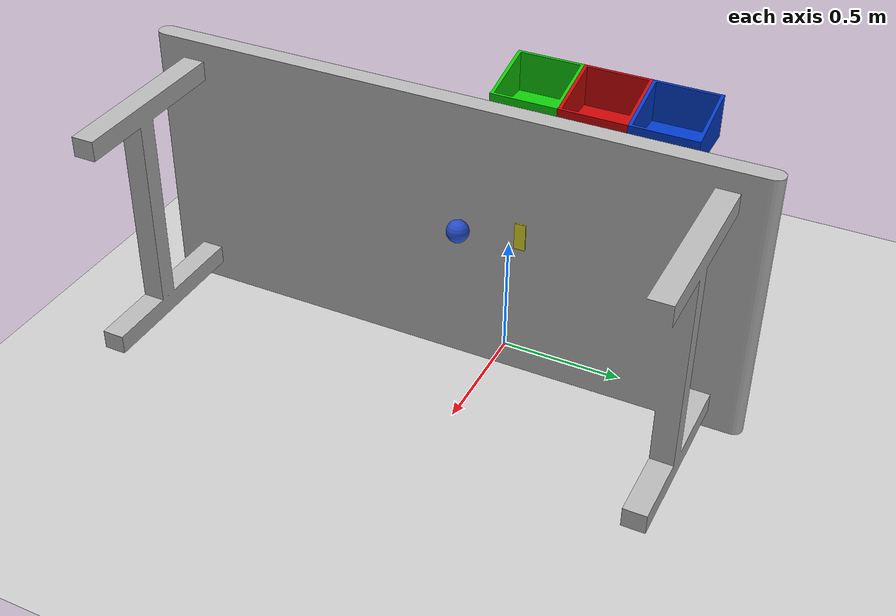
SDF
<sdf version="1.7">
 <world name="default">
  <light name="sun" type="directional">
   <pose>0 0 10 0 -0 0</pose>
   <diffuse>0.8 0.8 0.8 1</diffuse>
   <specular>0.2 0.2 0.2 1</specular>
   <attenuation>
    <range>1000</range>
    <constant>0.9</constant>
    <linear>0.01</linear>
    <quadratic>0.001</quadratic>
   </attenuation>
   <direction>-0.5 0.1 -0.9</direction>
   <spot><inner_angle>0</inner_angle><outer_angle>0</outer_angle><falloff>0</falloff></spot>
  </light>
  <model name="ground_plane">
   <static>1</static>
   <link name="link">
    <collision name="collision">
     <geometry><plane><normal>0 0 1</normal><size>100 100</size></plane></geometry>
     <surface>
      <contact><collide_bitmask>65535</collide_bitmask></contact>
      <friction><ode><mu>100</mu><mu2>50</mu2></ode></friction>
     </surface>
    </collision>
    <visual name="visual">
     <cast_shadows>0</cast_shadows>
     <geometry><plane><normal>0 0 1</normal><size>100 100</size></plane></geometry>
     <material>
      <script><uri>file://media/materials/scripts/gazebo.material</uri><name>Gazebo/Grey</name></script>
     </material>
    </visual>
   </link>
  </model>
  <gravity>0 0 -9.8</gravity>
  <magnetic_field>6e-06 2.3e-05 -4.2e-05</magnetic_field>
  <atmosphere type="adiabatic"/>
  <physics name="default_physics" default="0" type="ode">
   <max_step_size>0.001</max_step_size>
   <real_time_factor>1</real_time_factor>
   <real_time_update_rate>1000</real_time_update_rate>
  </physics>
  <scene><ambient>0.4 0.4 0.4 1</ambient><background>0.7 0.7 0.7 1</background><shadows>1</shadows></scene>
  <spherical_coordinates>
   <surface_model>EARTH_WGS84</surface_model>
   <latitude_deg>0</latitude_deg>
   <longitude_deg>0</longitude_deg>
   <elevation>0</elevation>
   <heading_deg>0</heading_deg>
  </spherical_coordinates>
  <model name="conveyor">
   <link name="link">
    <inertial>
     <mass>1</mass>
     <inertia><ixx>1</ixx><ixy>0</ixy><ixz>0</ixz><iyy>1</iyy><iyz>0</iyz><izz>1</izz></inertia>
    </inertial>
    <visual name="visual">
     <geometry><mesh><scale>0.45 0.35 0.5</scale><uri>model://conveyor/meshes/conveyor.dae</uri></mesh></geometry>
    </visual>
    <collision name="collision_0">
     <geometry><box><size>2.4 0.8 0.1</size></box></geometry>
     <surface>
      <friction>
       <ode><mu>1</mu><mu2>1</mu2><fdir1>0 0 0</fdir1><slip1>0</slip1><slip2>0</slip2></ode>
       <torsional>
        <coefficient>1</coefficient>
        <patch_radius>0</patch_radius>
        <surface_radius>0</surface_radius>
        <use_patch_radius>1</use_patch_radius>
        <ode><slip>0</slip></ode>
       </torsional>
      </friction>
      <bounce><restitution_coefficient>0</restitution_coefficient><threshold>1e+06</threshold></bounce>
      <contact>
       <collide_without_contact>0</collide_without_contact>
       <collide_without_contact_bitmask>1</collide_without_contact_bitmask>
       <collide_bitmask>1</collide_bitmask>
       <ode>
        <soft_cfm>0</soft_cfm>
        <soft_erp>0.2</soft_erp>
        <kp>1e+13</kp>
        <kd>1</kd>
        <max_vel>0.01</max_vel>
        <min_depth>0</min_depth>
       </ode>
       <bullet>
        <split_impulse>1</split_impulse>
        <split_impulse_penetration_threshold>-0.01</split_impulse_penetration_threshold>
        <soft_cfm>0</soft_cfm>
        <soft_erp>0.2</soft_erp>
        <kp>1e+13</kp>
        <kd>1</kd>
       </bullet>
      </contact>
     </surface>
    </collision>
   </link>
   <static>1</static>
   <pose>0.6 0 0.95 0 -0 1.57</pose>
  </model>
  <model name="green_target">
   <static>1</static>
   <link name="link">
    <inertial>
     <mass>1</mass>
     <inertia><ixx>1</ixx><ixy>0</ixy><ixz>0</ixz><iyy>1</iyy><iyz>0</iyz><izz>1</izz></inertia>
    </inertial>
    <visual name="visual">
     <pose>0 0 0.01 0 -0 0</pose>
     <geometry>
      <mesh><scale>0.5 0.5 0.5</scale><uri>model://green_target/meshes/green_target.dae</uri></mesh>
     </geometry>
    </visual>
    <collision name="front_wall">
     <pose>0.144 0 0 0 -0 0</pose>
     <geometry><box><size>0.012 0.3 0.24</size></box></geometry>
     <surface>
      <friction>
       <ode><mu>1</mu><mu2>1</mu2><fdir1>0 0 0</fdir1><slip1>0</slip1><slip2>0</slip2></ode>
       <torsional>
        <coefficient>1</coefficient>
        <patch_radius>0</patch_radius>
        <surface_radius>0</surface_radius>
        <use_patch_radius>1</use_patch_radius>
        <ode><slip>0</slip></ode>
       </torsional>
      </friction>
      <bounce><restitution_coefficient>0</restitution_coefficient><threshold>1e+06</threshold></bounce>
      <contact>
       <collide_without_contact>0</collide_without_contact>
       <collide_without_contact_bitmask>1</collide_without_contact_bitmask>
       <collide_bitmask>1</collide_bitmask>
       <ode>
        <soft_cfm>0</soft_cfm>
        <soft_erp>0.2</soft_erp>
        <kp>1e+13</kp>
        <kd>1</kd>
        <max_vel>0.01</max_vel>
        <min_depth>0</min_depth>
       </ode>
       <bullet>
        <split_impulse>1</split_impulse>
        <split_impulse_penetration_threshold>-0.01</split_impulse_penetration_threshold>
        <soft_cfm>0</soft_cfm>
        <soft_erp>0.2</soft_erp>
        <kp>1e+13</kp>
        <kd>1</kd>
       </bullet>
      </contact>
     </surface>
    </collision>
    <collision name="right_wall">
     <pose>0 -0.144 0 0 -0 0</pose>
     <geometry><box><size>0.3 0.012 0.36</size></box></geometry>
     <surface>
      <friction>
       <ode><mu>1</mu><mu2>1</mu2><fdir1>0 0 0</fdir1><slip1>0</slip1><slip2>0</slip2></ode>
       <torsional>
        <coefficient>1</coefficient>
        <patch_radius>0</patch_radius>
        <surface_radius>0</surface_radius>
        <use_patch_radius>1</use_patch_radius>
        <ode><slip>0</slip></ode>
       </torsional>
      </friction>
      <bounce><restitution_coefficient>0</restitution_coefficient><threshold>1e+06</threshold></bounce>
      <contact>
       <collide_without_contact>0</collide_without_contact>
       <collide_without_contact_bitmask>1</collide_without_contact_bitmask>
       <collide_bitmask>1</collide_bitmask>
       <ode>
        <soft_cfm>0</soft_cfm>
        <soft_erp>0.2</soft_erp>
        <kp>1e+13</kp>
        <kd>1</kd>
        <max_vel>0.01</max_vel>
        <min_depth>0</min_depth>
       </ode>
       <bullet>
        <split_impulse>1</split_impulse>
        <split_impulse_penetration_threshold>-0.01</split_impulse_penetration_threshold>
        <soft_cfm>0</soft_cfm>
        <soft_erp>0.2</soft_erp>
        <kp>1e+13</kp>
        <kd>1</kd>
       </bullet>
      </contact>
     </surface>
    </collision>
    <collision name="bottom">
     <geometry><box><size>0.3 0.3 0.025</size></box></geometry>
     <surface>
      <friction>
       <ode><mu>1</mu><mu2>1</mu2><fdir1>0 0 0</fdir1><slip1>0</slip1><slip2>0</slip2></ode>
       <torsional>
        <coefficient>1</coefficient>
        <patch_radius>0</patch_radius>
        <surface_radius>0</surface_radius>
        <use_patch_radius>1</use_patch_radius>
        <ode><slip>0</slip></ode>
       </torsional>
      </friction>
      <bounce><restitution_coefficient>0</restitution_coefficient><threshold>1e+06</threshold></bounce>
      <contact>
       <collide_without_contact>0</collide_without_contact>
       <collide_without_contact_bitmask>1</collide_without_contact_bitmask>
       <collide_bitmask>1</collide_bitmask>
       <ode>
        <soft_cfm>0</soft_cfm>
        <soft_erp>0.2</soft_erp>
        <kp>1e+13</kp>
        <kd>1</kd>
        <max_vel>0.01</max_vel>
        <min_depth>0</min_depth>
       </ode>
       <bullet>
        <split_impulse>1</split_impulse>
        <split_impulse_penetration_threshold>-0.01</split_impulse_penetration_threshold>
        <soft_cfm>0</soft_cfm>
        <soft_erp>0.2</soft_erp>
        <kp>1e+13</kp>
        <kd>1</kd>
       </bullet>
      </contact>
     </surface>
    </collision>
    <collision name="left_wall">
     <pose>0 0.144 0 0 -0 0</pose>
     <geometry><box><size>0.3 0.012 0.39</size></box></geometry>
     <surface>
      <friction>
       <ode><mu>1</mu><mu2>1</mu2><fdir1>0 0 0</fdir1><slip1>0</slip1><slip2>0</slip2></ode>
       <torsional>
        <coefficient>1</coefficient>
        <patch_radius>0</patch_radius>
        <surface_radius>0</surface_radius>
        <use_patch_radius>1</use_patch_radius>
        <ode><slip>0</slip></ode>
       </torsional>
      </friction>
      <bounce><restitution_coefficient>0</restitution_coefficient><threshold>1e+06</threshold></bounce>
      <contact>
       <collide_without_contact>0</collide_without_contact>
       <collide_without_contact_bitmask>1</collide_without_contact_bitmask>
       <collide_bitmask>1</collide_bitmask>
       <ode>
        <soft_cfm>0</soft_cfm>
        <soft_erp>0.2</soft_erp>
        <kp>1e+13</kp>
        <kd>1</kd>
        <max_vel>0.01</max_vel>
        <min_depth>0</min_depth>
       </ode>
       <bullet>
        <split_impulse>1</split_impulse>
        <split_impulse_penetration_threshold>-0.01</split_impulse_penetration_threshold>
        <soft_cfm>0</soft_cfm>
        <soft_erp>0.2</soft_erp>
        <kp>1e+13</kp>
        <kd>1</kd>
       </bullet>
      </contact>
     </surface>
    </collision>
    <collision name="back_wall">
     <pose>-0.144 0 0 0 -0 0</pose>
     <geometry><box><size>0.012 0.3 0.39</size></box></geometry>
     <surface>
      <friction>
       <ode><mu>1</mu><mu2>1</mu2><fdir1>0 0 0</fdir1><slip1>0</slip1><slip2>0</slip2></ode>
       <torsional>
        <coefficient>1</coefficient>
        <patch_radius>0</patch_radius>
        <surface_radius>0</surface_radius>
        <use_patch_radius>1</use_patch_radius>
        <ode><slip>0</slip></ode>
       </torsional>
      </friction>
      <bounce><restitution_coefficient>0</restitution_coefficient><threshold>1e+06</threshold></bounce>
      <contact>
       <collide_without_contact>0</collide_without_contact>
       <collide_without_contact_bitmask>1</collide_without_contact_bitmask>
       <collide_bitmask>1</collide_bitmask>
       <ode>
        <soft_cfm>0</soft_cfm>
        <soft_erp>0.2</soft_erp>
        <kp>1e+13</kp>
        <kd>1</kd>
        <max_vel>0.01</max_vel>
        <min_depth>0</min_depth>
       </ode>
       <bullet>
        <split_impulse>1</split_impulse>
        <split_impulse_penetration_threshold>-0.01</split_impulse_penetration_threshold>
        <soft_cfm>0</soft_cfm>
        <soft_erp>0.2</soft_erp>
        <kp>1e+13</kp>
        <kd>1</kd>
       </bullet>
      </contact>
     </surface>
    </collision>
   </link>
   <pose>-0.6 -0.15 0.755 0 -0 0</pose>
  </model>
  <model name="red_target">
   <static>1</static>
   <link name="link">
    <inertial>
     <mass>1</mass>
     <inertia><ixx>1</ixx><ixy>0</ixy><ixz>0</ixz><iyy>1</iyy><iyz>0</iyz><izz>1</izz></inertia>
    </inertial>
    <visual name="visual">
     <pose>0 0 0.01 0 -0 0</pose>
     <geometry>
      <mesh><scale>0.5 0.5 0.5</scale><uri>model://red_target/meshes/red_target.dae</uri></mesh>
     </geometry>
    </visual>
    <collision name="front_wall">
     <pose>0.144 0 0 0 -0 0</pose>
     <geometry><box><size>0.012 0.3 0.24</size></box></geometry>
     <surface>
      <friction>
       <ode><mu>1</mu><mu2>1</mu2><fdir1>0 0 0</fdir1><slip1>0</slip1><slip2>0</slip2></ode>
       <torsional>
        <coefficient>1</coefficient>
        <patch_radius>0</patch_radius>
        <surface_radius>0</surface_radius>
        <use_patch_radius>1</use_patch_radius>
        <ode><slip>0</slip></ode>
       </torsional>
      </friction>
      <bounce><restitution_coefficient>0</restitution_coefficient><threshold>1e+06</threshold></bounce>
      <contact>
       <collide_without_contact>0</collide_without_contact>
       <collide_without_contact_bitmask>1</collide_without_contact_bitmask>
       <collide_bitmask>1</collide_bitmask>
       <ode>
        <soft_cfm>0</soft_cfm>
        <soft_erp>0.2</soft_erp>
        <kp>1e+13</kp>
        <kd>1</kd>
        <max_vel>0.01</max_vel>
        <min_depth>0</min_depth>
       </ode>
       <bullet>
        <split_impulse>1</split_impulse>
        <split_impulse_penetration_threshold>-0.01</split_impulse_penetration_threshold>
        <soft_cfm>0</soft_cfm>
        <soft_erp>0.2</soft_erp>
        <kp>1e+13</kp>
        <kd>1</kd>
       </bullet>
      </contact>
     </surface>
    </collision>
    <collision name="right_wall">
     <pose>0 -0.144 0 0 -0 0</pose>
     <geometry><box><size>0.3 0.012 0.36</size></box></geometry>
     <surface>
      <friction>
       <ode><mu>1</mu><mu2>1</mu2><fdir1>0 0 0</fdir1><slip1>0</slip1><slip2>0</slip2></ode>
       <torsional>
        <coefficient>1</coefficient>
        <patch_radius>0</patch_radius>
        <surface_radius>0</surface_radius>
        <use_patch_radius>1</use_patch_radius>
        <ode><slip>0</slip></ode>
       </torsional>
      </friction>
      <bounce><restitution_coefficient>0</restitution_coefficient><threshold>1e+06</threshold></bounce>
      <contact>
       <collide_without_contact>0</collide_without_contact>
       <collide_without_contact_bitmask>1</collide_without_contact_bitmask>
       <collide_bitmask>1</collide_bitmask>
       <ode>
        <soft_cfm>0</soft_cfm>
        <soft_erp>0.2</soft_erp>
        <kp>1e+13</kp>
        <kd>1</kd>
        <max_vel>0.01</max_vel>
        <min_depth>0</min_depth>
       </ode>
       <bullet>
        <split_impulse>1</split_impulse>
        <split_impulse_penetration_threshold>-0.01</split_impulse_penetration_threshold>
        <soft_cfm>0</soft_cfm>
        <soft_erp>0.2</soft_erp>
        <kp>1e+13</kp>
        <kd>1</kd>
       </bullet>
      </contact>
     </surface>
    </collision>
    <collision name="bottom">
     <geometry><box><size>0.3 0.3 0.025</size></box></geometry>
     <surface>
      <friction>
       <ode><mu>1</mu><mu2>1</mu2><fdir1>0 0 0</fdir1><slip1>0</slip1><slip2>0</slip2></ode>
       <torsional>
        <coefficient>1</coefficient>
        <patch_radius>0</patch_radius>
        <surface_radius>0</surface_radius>
        <use_patch_radius>1</use_patch_radius>
        <ode><slip>0</slip></ode>
       </torsional>
      </friction>
      <bounce><restitution_coefficient>0</restitution_coefficient><threshold>1e+06</threshold></bounce>
      <contact>
       <collide_without_contact>0</collide_without_contact>
       <collide_without_contact_bitmask>1</collide_without_contact_bitmask>
       <collide_bitmask>1</collide_bitmask>
       <ode>
        <soft_cfm>0</soft_cfm>
        <soft_erp>0.2</soft_erp>
        <kp>1e+13</kp>
        <kd>1</kd>
        <max_vel>0.01</max_vel>
        <min_depth>0</min_depth>
       </ode>
       <bullet>
        <split_impulse>1</split_impulse>
        <split_impulse_penetration_threshold>-0.01</split_impulse_penetration_threshold>
        <soft_cfm>0</soft_cfm>
        <soft_erp>0.2</soft_erp>
        <kp>1e+13</kp>
        <kd>1</kd>
       </bullet>
      </contact>
     </surface>
    </collision>
    <collision name="left_wall">
     <pose>0 0.144 0 0 -0 0</pose>
     <geometry><box><size>0.3 0.012 0.39</size></box></geometry>
     <surface>
      <friction>
       <ode><mu>1</mu><mu2>1</mu2><fdir1>0 0 0</fdir1><slip1>0</slip1><slip2>0</slip2></ode>
       <torsional>
        <coefficient>1</coefficient>
        <patch_radius>0</patch_radius>
        <surface_radius>0</surface_radius>
        <use_patch_radius>1</use_patch_radius>
        <ode><slip>0</slip></ode>
       </torsional>
      </friction>
      <bounce><restitution_coefficient>0</restitution_coefficient><threshold>1e+06</threshold></bounce>
      <contact>
       <collide_without_contact>0</collide_without_contact>
       <collide_without_contact_bitmask>1</collide_without_contact_bitmask>
       <collide_bitmask>1</collide_bitmask>
       <ode>
        <soft_cfm>0</soft_cfm>
        <soft_erp>0.2</soft_erp>
        <kp>1e+13</kp>
        <kd>1</kd>
        <max_vel>0.01</max_vel>
        <min_depth>0</min_depth>
       </ode>
       <bullet>
        <split_impulse>1</split_impulse>
        <split_impulse_penetration_threshold>-0.01</split_impulse_penetration_threshold>
        <soft_cfm>0</soft_cfm>
        <soft_erp>0.2</soft_erp>
        <kp>1e+13</kp>
        <kd>1</kd>
       </bullet>
      </contact>
     </surface>
    </collision>
    <collision name="back_wall">
     <pose>-0.144 0 0 0 -0 0</pose>
     <geometry><box><size>0.012 0.3 0.39</size></box></geometry>
     <surface>
      <friction>
       <ode><mu>1</mu><mu2>1</mu2><fdir1>0 0 0</fdir1><slip1>0</slip1><slip2>0</slip2></ode>
       <torsional>
        <coefficient>1</coefficient>
        <patch_radius>0</patch_radius>
        <surface_radius>0</surface_radius>
        <use_patch_radius>1</use_patch_radius>
        <ode><slip>0</slip></ode>
       </torsional>
      </friction>
      <bounce><restitution_coefficient>0</restitution_coefficient><threshold>1e+06</threshold></bounce>
      <contact>
       <collide_without_contact>0</collide_without_contact>
       <collide_without_contact_bitmask>1</collide_without_contact_bitmask>
       <collide_bitmask>1</collide_bitmask>
       <ode>
        <soft_cfm>0</soft_cfm>
        <soft_erp>0.2</soft_erp>
        <kp>1e+13</kp>
        <kd>1</kd>
        <max_vel>0.01</max_vel>
        <min_depth>0</min_depth>
       </ode>
       <bullet>
        <split_impulse>1</split_impulse>
        <split_impulse_penetration_threshold>-0.01</split_impulse_penetration_threshold>
        <soft_cfm>0</soft_cfm>
        <soft_erp>0.2</soft_erp>
        <kp>1e+13</kp>
        <kd>1</kd>
       </bullet>
      </contact>
     </surface>
    </collision>
   </link>
   <pose>-0.6 0.15 0.755 0 -0 0</pose>
  </model>
  <model name="blue_target">
   <static>1</static>
   <link name="link">
    <inertial>
     <mass>1</mass>
     <inertia><ixx>1</ixx><ixy>0</ixy><ixz>0</ixz><iyy>1</iyy><iyz>0</iyz><izz>1</izz></inertia>
    </inertial>
    <visual name="visual">
     <pose>0 0 0.01 0 -0 0</pose>
     <geometry>
      <mesh><scale>0.5 0.5 0.5</scale><uri>model://blue_target/meshes/blue_target.dae</uri></mesh>
     </geometry>
    </visual>
    <collision name="front_wall">
     <pose>0.144 0 0 0 -0 0</pose>
     <geometry><box><size>0.012 0.3 0.24</size></box></geometry>
     <surface>
      <friction>
       <ode><mu>1</mu><mu2>1</mu2><fdir1>0 0 0</fdir1><slip1>0</slip1><slip2>0</slip2></ode>
       <torsional>
        <coefficient>1</coefficient>
        <patch_radius>0</patch_radius>
        <surface_radius>0</surface_radius>
        <use_patch_radius>1</use_patch_radius>
        <ode><slip>0</slip></ode>
       </torsional>
      </friction>
      <bounce><restitution_coefficient>0</restitution_coefficient><threshold>1e+06</threshold></bounce>
      <contact>
       <collide_without_contact>0</collide_without_contact>
       <collide_without_contact_bitmask>1</collide_without_contact_bitmask>
       <collide_bitmask>1</collide_bitmask>
       <ode>
        <soft_cfm>0</soft_cfm>
        <soft_erp>0.2</soft_erp>
        <kp>1e+13</kp>
        <kd>1</kd>
        <max_vel>0.01</max_vel>
        <min_depth>0</min_depth>
       </ode>
       <bullet>
        <split_impulse>1</split_impulse>
        <split_impulse_penetration_threshold>-0.01</split_impulse_penetration_threshold>
        <soft_cfm>0</soft_cfm>
        <soft_erp>0.2</soft_erp>
        <kp>1e+13</kp>
        <kd>1</kd>
       </bullet>
      </contact>
     </surface>
    </collision>
    <collision name="right_wall">
     <pose>0 -0.144 0 0 -0 0</pose>
     <geometry><box><size>0.3 0.012 0.36</size></box></geometry>
     <surface>
      <friction>
       <ode><mu>1</mu><mu2>1</mu2><fdir1>0 0 0</fdir1><slip1>0</slip1><slip2>0</slip2></ode>
       <torsional>
        <coefficient>1</coefficient>
        <patch_radius>0</patch_radius>
        <surface_radius>0</surface_radius>
        <use_patch_radius>1</use_patch_radius>
        <ode><slip>0</slip></ode>
       </torsional>
      </friction>
      <bounce><restitution_coefficient>0</restitution_coefficient><threshold>1e+06</threshold></bounce>
      <contact>
       <collide_without_contact>0</collide_without_contact>
       <collide_without_contact_bitmask>1</collide_without_contact_bitmask>
       <collide_bitmask>1</collide_bitmask>
       <ode>
        <soft_cfm>0</soft_cfm>
        <soft_erp>0.2</soft_erp>
        <kp>1e+13</kp>
        <kd>1</kd>
        <max_vel>0.01</max_vel>
        <min_depth>0</min_depth>
       </ode>
       <bullet>
        <split_impulse>1</split_impulse>
        <split_impulse_penetration_threshold>-0.01</split_impulse_penetration_threshold>
        <soft_cfm>0</soft_cfm>
        <soft_erp>0.2</soft_erp>
        <kp>1e+13</kp>
        <kd>1</kd>
       </bullet>
      </contact>
     </surface>
    </collision>
    <collision name="bottom">
     <geometry><box><size>0.3 0.3 0.025</size></box></geometry>
     <surface>
      <friction>
       <ode><mu>1</mu><mu2>1</mu2><fdir1>0 0 0</fdir1><slip1>0</slip1><slip2>0</slip2></ode>
       <torsional>
        <coefficient>1</coefficient>
        <patch_radius>0</patch_radius>
        <surface_radius>0</surface_radius>
        <use_patch_radius>1</use_patch_radius>
        <ode><slip>0</slip></ode>
       </torsional>
      </friction>
      <bounce><restitution_coefficient>0</restitution_coefficient><threshold>1e+06</threshold></bounce>
      <contact>
       <collide_without_contact>0</collide_without_contact>
       <collide_without_contact_bitmask>1</collide_without_contact_bitmask>
       <collide_bitmask>1</collide_bitmask>
       <ode>
        <soft_cfm>0</soft_cfm>
        <soft_erp>0.2</soft_erp>
        <kp>1e+13</kp>
        <kd>1</kd>
        <max_vel>0.01</max_vel>
        <min_depth>0</min_depth>
       </ode>
       <bullet>
        <split_impulse>1</split_impulse>
        <split_impulse_penetration_threshold>-0.01</split_impulse_penetration_threshold>
        <soft_cfm>0</soft_cfm>
        <soft_erp>0.2</soft_erp>
        <kp>1e+13</kp>
        <kd>1</kd>
       </bullet>
      </contact>
     </surface>
    </collision>
    <collision name="left_wall">
     <pose>0 0.144 0 0 -0 0</pose>
     <geometry><box><size>0.3 0.012 0.39</size></box></geometry>
     <surface>
      <friction>
       <ode><mu>1</mu><mu2>1</mu2><fdir1>0 0 0</fdir1><slip1>0</slip1><slip2>0</slip2></ode>
       <torsional>
        <coefficient>1</coefficient>
        <patch_radius>0</patch_radius>
        <surface_radius>0</surface_radius>
        <use_patch_radius>1</use_patch_radius>
        <ode><slip>0</slip></ode>
       </torsional>
      </friction>
      <bounce><restitution_coefficient>0</restitution_coefficient><threshold>1e+06</threshold></bounce>
      <contact>
       <collide_without_contact>0</collide_without_contact>
       <collide_without_contact_bitmask>1</collide_without_contact_bitmask>
       <collide_bitmask>1</collide_bitmask>
       <ode>
        <soft_cfm>0</soft_cfm>
        <soft_erp>0.2</soft_erp>
        <kp>1e+13</kp>
        <kd>1</kd>
        <max_vel>0.01</max_vel>
        <min_depth>0</min_depth>
       </ode>
       <bullet>
        <split_impulse>1</split_impulse>
        <split_impulse_penetration_threshold>-0.01</split_impulse_penetration_threshold>
        <soft_cfm>0</soft_cfm>
        <soft_erp>0.2</soft_erp>
        <kp>1e+13</kp>
        <kd>1</kd>
       </bullet>
      </contact>
     </surface>
    </collision>
    <collision name="back_wall">
     <pose>-0.144 0 0 0 -0 0</pose>
     <geometry><box><size>0.012 0.3 0.39</size></box></geometry>
     <surface>
      <friction>
       <ode><mu>1</mu><mu2>1</mu2><fdir1>0 0 0</fdir1><slip1>0</slip1><slip2>0</slip2></ode>
       <torsional>
        <coefficient>1</coefficient>
        <patch_radius>0</patch_radius>
        <surface_radius>0</surface_radius>
        <use_patch_radius>1</use_patch_radius>
        <ode><slip>0</slip></ode>
       </torsional>
      </friction>
      <bounce><restitution_coefficient>0</restitution_coefficient><threshold>1e+06</threshold></bounce>
      <contact>
       <collide_without_contact>0</collide_without_contact>
       <collide_without_contact_bitmask>1</collide_without_contact_bitmask>
       <collide_bitmask>1</collide_bitmask>
       <ode>
        <soft_cfm>0</soft_cfm>
        <soft_erp>0.2</soft_erp>
        <kp>1e+13</kp>
        <kd>1</kd>
        <max_vel>0.01</max_vel>
        <min_depth>0</min_depth>
       </ode>
       <bullet>
        <split_impulse>1</split_impulse>
        <split_impulse_penetration_threshold>-0.01</split_impulse_penetration_threshold>
        <soft_cfm>0</soft_cfm>
        <soft_erp>0.2</soft_erp>
        <kp>1e+13</kp>
        <kd>1</kd>
       </bullet>
      </contact>
     </surface>
    </collision>
   </link>
   <pose>-0.6 0.45 0.755 0 -0 0</pose>
  </model>
  <plugin name="gazebo_link_attacher" filename="libgazebo_link_attacher.so"/>
  <audio><device>default</device></audio>
  <model name="red_box">
   <link name="red_box">
    <inertial>
     <mass>0.01</mass>
     <inertia><ixx>0</ixx><ixy>0</ixy><ixz>0</ixz><iyy>0</iyy><iyz>0</iyz><izz>0</izz></inertia>
    </inertial>
    <collision name="red_box_collision"><geometry><box><size>0.05 0.1 0.08</size></box></geometry></collision>
    <visual name="red_box_visual">
     <geometry><box><size>0.05 0.1 0.08</size></box></geometry>
     <material>
      <script><name>Gazebo/Red</name><uri>file://media/materials/scripts/gazebo.material</uri></script>
     </material>
    </visual>
   </link>
   <pose>0.6 -0.3 1.01 0 -0 0</pose>
  </model>
  <model name="green_cylinder">
   <link name="green_cylinder">
    <inertial>
     <mass>0.01</mass>
     <inertia><ixx>0</ixx><ixy>0</ixy><ixz>0</ixz><iyy>0</iyy><iyz>0</iyz><izz>0</izz></inertia>
    </inertial>
    <collision name="green_cylinder_collision">
     <geometry><cylinder><length>0.15</length><radius>0.03</radius></cylinder></geometry>
    </collision>
    <visual name="green_cylinder_visual">
     <geometry><cylinder><length>0.15</length><radius>0.03</radius></cylinder></geometry>
     <material>
      <script><name>Gazebo/Green</name><uri>file://media/materials/scripts/gazebo.material</uri></script>
     </material>
    </visual>
   </link>
   <pose>0.5 -0.1 1.01 0 -0 0</pose>
  </model>
  <model name="blue_sphere">
   <link name="blue_sphere">
    <inertial>
     <mass>0.01</mass>
     <inertia><ixx>0</ixx><ixy>0</ixy><ixz>0</ixz><iyy>0</iyy><iyz>0</iyz><izz>0</izz></inertia>
    </inertial>
    <collision name="blue_sphere_collision">
     <geometry><sphere><radius>0.04</radius></sphere></geometry>
    </collision>
    <visual name="blue_sphere_visual">
     <geometry><sphere><radius>0.04</radius></sphere></geometry>
     <material>
      <script><name>Gazebo/Blue</name><uri>file://media/materials/scripts/gazebo.material</uri></script>
     </material>
    </visual>
   </link>
   <pose>0.7 0.1 1.01 0 -0 0</pose>
  </model>
  <model name="yellow_box">
   <link name="yellow_box">
    <inertial>
     <mass>0.01</mass>
     <inertia><ixx>0</ixx><ixy>0</ixy><ixz>0</ixz><iyy>0</iyy><iyz>0</iyz><izz>0</izz></inertia>
    </inertial>
    <collision name="yellow_box_collision"><geometry><box><size>0.05 0.07 0.1</size></box></geometry></collision>
    <visual name="yellow_box_visual">
     <geometry><box><size>0.08 0.04 0.1</size></box></geometry>
     <material>
      <script><name>Gazebo/Yellow</name><uri>file://media/materials/scripts/gazebo.material</uri></script>
     </material>
    </visual>
   </link>
   <pose>0.6 0.3 1.01 0 -0 0</pose>
  </model>
 </world>
</sdf>
